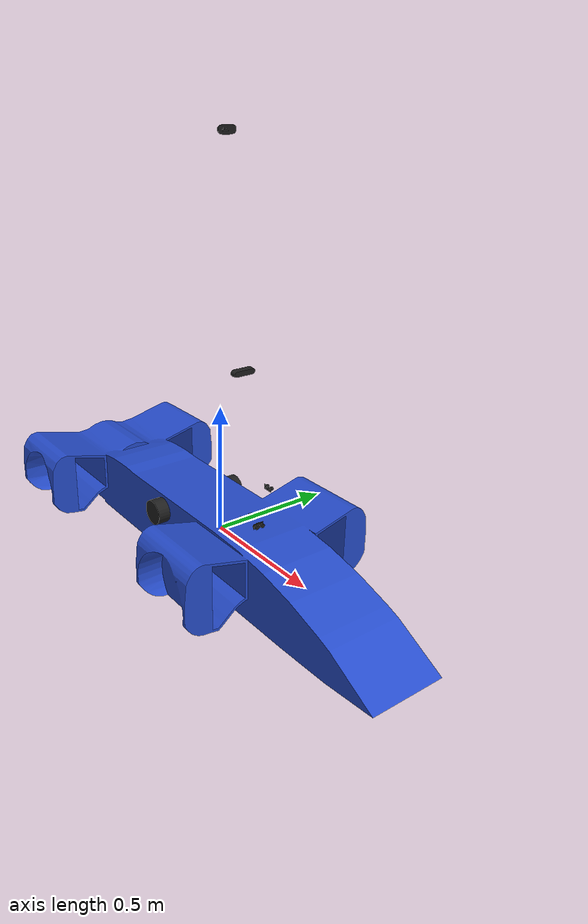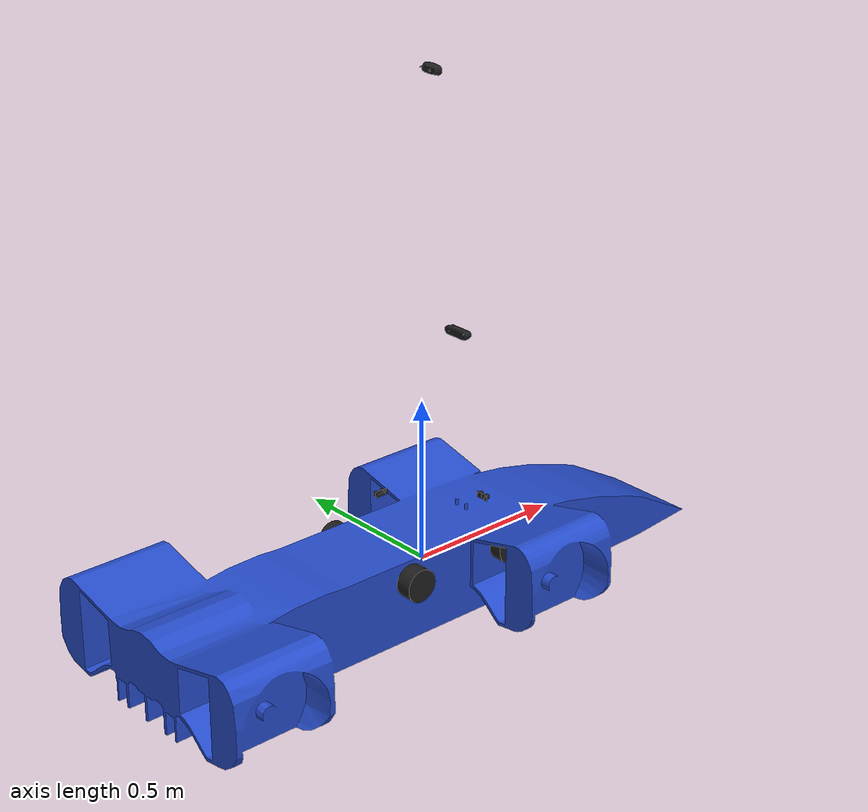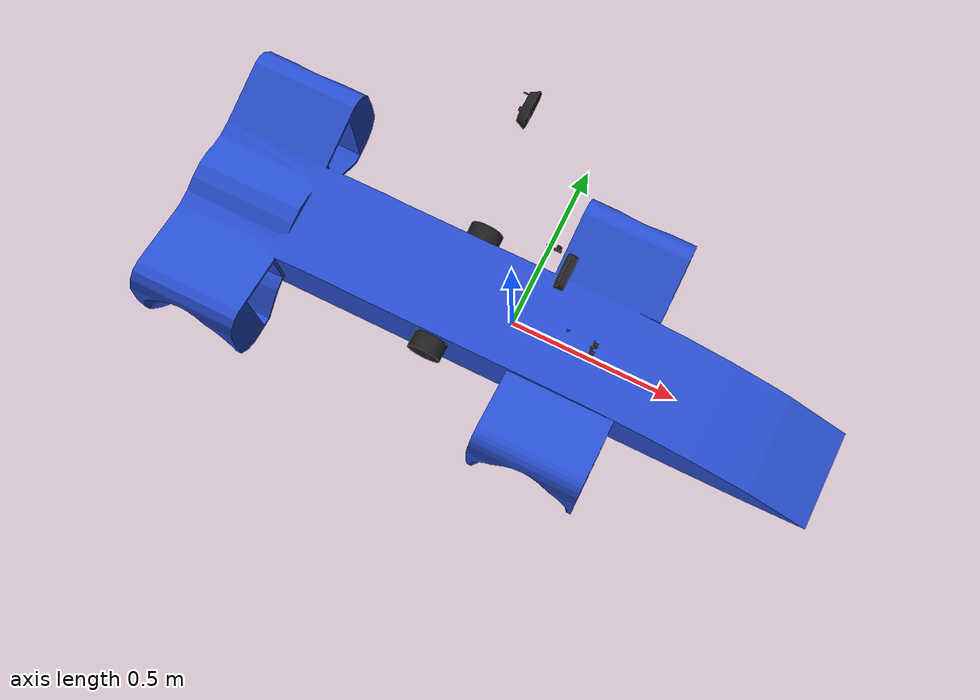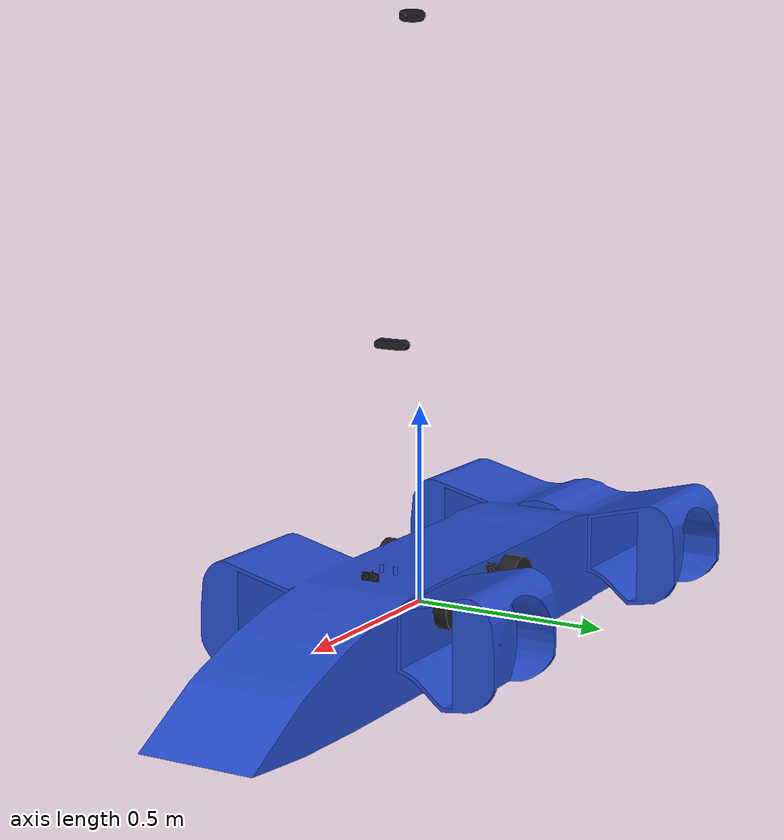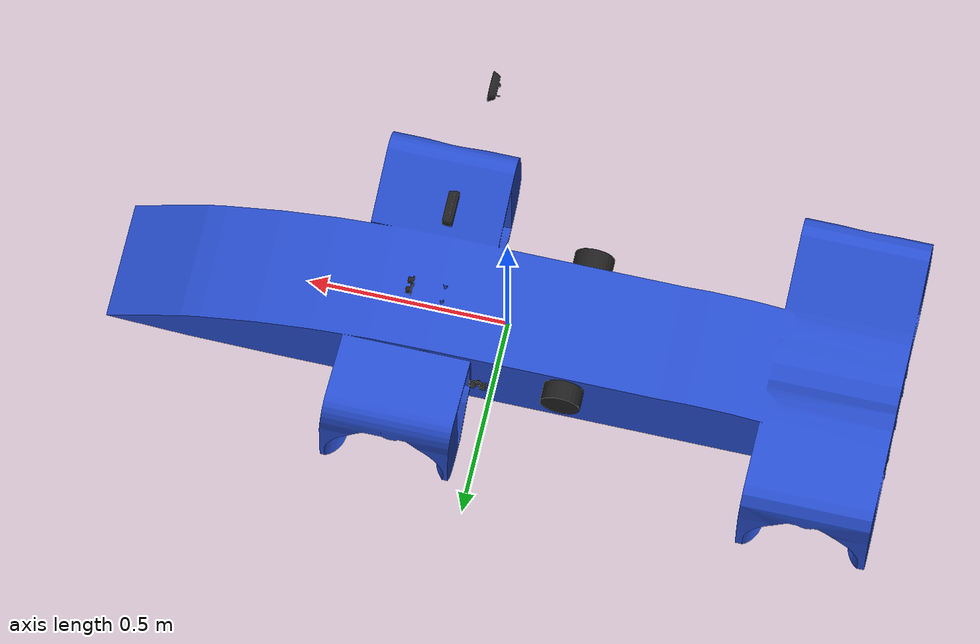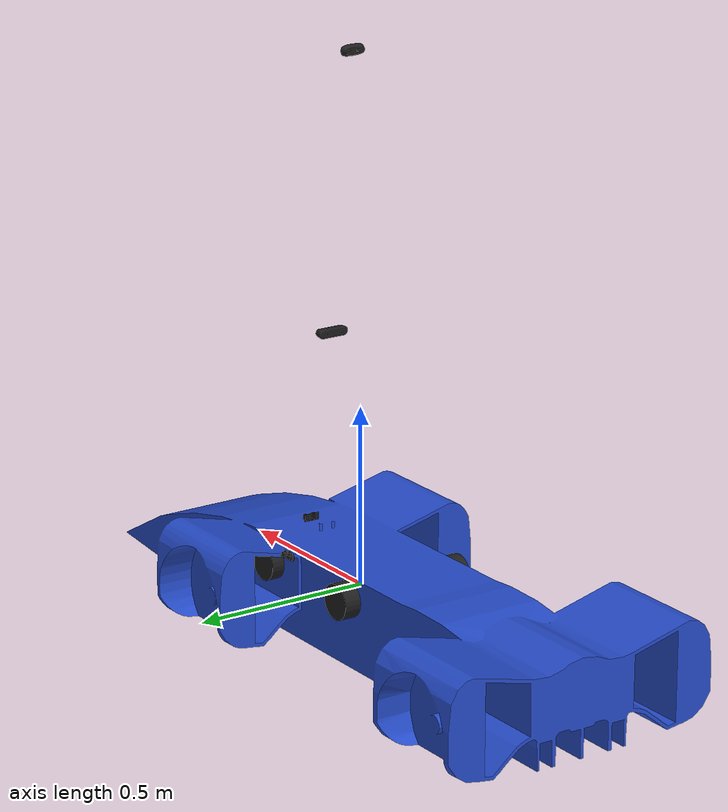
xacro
<?xml version="1.0"?>

<robot name="my_robot"
    xmlns:xacro="http://www.ros.org/wiki/xacro">
    <xacro:include filename="$(find my_robot)/urdf/moovy.gazebo" />
    <gazebo reference="base_link">
        <material>Gazebo/Blue</material>
    </gazebo>

    <gazebo reference="front_left_wheel">
        <material>Gazebo/Black</material>
    </gazebo>

    <gazebo reference="front_right_wheel">
        <material>Gazebo/Black</material>
    </gazebo>

    <gazebo reference="back_left_wheel">
        <material>Gazebo/Black</material>
    </gazebo>

    <gazebo reference="back_right_wheel">
        <material>Gazebo/Black</material>
    </gazebo>

    <gazebo reference="camera_link">
        <material>Gazebo/Black</material>
    </gazebo>

    <gazebo reference="front_ultrasonic_link">
        <material>Gazebo/Black</material>
    </gazebo>

    <gazebo reference="left_ultrasonic_link">
        <material>Gazebo/Black</material>
    </gazebo>
    <gazebo reference="realsense_link">
        <material>Gazebo/Black</material>
    </gazebo>
    <link name="robot_footprint">
    </link>

    <link name="base_link">
        <origin xyz="0 0 0" rpy=" 0 -0 0"/>
        <visual>
            <geometry>
                <mesh filename="package://my_robot/meshes/base_link.stl"/>
            </geometry>
            <origin rpy="0 0 0" xyz="0 0 0"/>
        </visual>
        <collision>
            <geometry>
                <mesh filename="package://my_robot/meshes/base_link.stl"/>
            </geometry>
            <origin rpy="0 0 0" xyz="0 0 0.1"/>
        </collision>
        <inertial>
            <mass value="10"/>
            <inertia ixx="0.166667" ixy="0.0" ixz="0.0" iyy="0.166667" iyz="0.0" izz="0.166667"/>
            <origin rpy="0 0 0" xyz="0 0 0.05"/>
        </inertial>
    </link>

    <link name="front_left_wheel">
        <visual>
            <geometry>
                <cylinder length="0.05" radius="0.05"/>
            </geometry>
            <origin rpy="1.5707 0 0" xyz="0 0 0"/>
        </visual>
        <collision>
            <geometry>
                <cylinder length="0.05" radius="0.05"/>
            </geometry>
            <origin rpy="1.5707 0 0" xyz="0 0 0"/>
        </collision>
        <inertial>
            <mass value="5"/>
            <inertia ixx="0.14" ixy="0.0" ixz="0.0" iyy="0.14" iyz="0.0" izz="0.12"/>
            <origin rpy="1.5707 0 0" xyz="0 0 0"/>
        </inertial>
    </link>

    <link name="front_right_wheel">
        <visual>
            <geometry>
                <cylinder length="0.05" radius="0.05"/>
            </geometry>
            <origin rpy="1.5707 0 0" xyz="0 0 0"/>
        </visual>
        <collision>
            <geometry>
                <cylinder length="0.05" radius="0.05"/>
            </geometry>
            <origin rpy="1.5707 0 0" xyz="0 0 0"/>
        </collision>
        <inertial>
            <mass value="5"/>
            <inertia ixx="0.14" ixy="0.0" ixz="0.0" iyy="0.14" iyz="0.0" izz="0.12"/>
            <origin rpy="1.5707 0 0" xyz="0 0 0"/>
        </inertial>
    </link>

    <link name="back_left_wheel">
        <visual>
            <geometry>
                <cylinder length="0.05" radius="0.05"/>
            </geometry>
            <origin rpy="1.5707 0 0" xyz="0 0 0"/>
        </visual>
        <collision>
            <geometry>
                <cylinder length="0.05" radius="0.05"/>
            </geometry>
            <origin rpy="1.5707 0 0" xyz="0 0 0"/>
        </collision>
        <inertial>
            <mass value="5"/>
            <inertia ixx="0.14" ixy="0.0" ixz="0.0" iyy="0.14" iyz="0.0" izz="0.12"/>
            <origin rpy="1.5707 0 0" xyz="0 0 0"/>
        </inertial>
    </link>

    <link name="back_right_wheel">
        <visual>
            <geometry>
                <cylinder length="0.05" radius="0.05"/>
            </geometry>
            <origin rpy="1.5707 0 0" xyz="0 0 0"/>
        </visual>
        <collision>
            <geometry>
                <cylinder length="0.05" radius="0.05"/>
            </geometry>
            <origin rpy="1.5707 0 0" xyz="0 0 0"/>
        </collision>
        <inertial>
            <mass value="5"/>
            <inertia ixx="0.14" ixy="0.0" ixz="0.0" iyy="0.14" iyz="0.0" izz="0.12"/>
            <origin rpy="1.5707 0 0" xyz="0 0 0"/>
        </inertial>
    </link>

    <joint name="robot_footprint_joint" type="fixed">
        <parent link="robot_footprint"/>
        <child link="base_link"/>
        <origin xyz="0 0 0" rpy="0 0 0" />
    </joint>

    <joint name="front_left_wheel_joint" type="continuous">
        <parent link="base_link"/>
        <child link="front_left_wheel"/>
        <origin rpy="0 0 0" xyz="0.175 0.175 0.05"/>
        <axis rpy="0 0 0" xyz="0 1 0"/>
        <dynamics damping="1.0" friction="1.0"/>
        <limit effort="10000" velocity="1000"/>
    </joint>

    <joint name="front_right_wheel_joint" type="continuous">
        <parent link="base_link"/>
        <child link="front_right_wheel"/>
        <origin rpy="0 0 0" xyz="0.175 -0.175 0.05"/>
        <axis rpy="0 0 0" xyz="0 1 0"/>
        <dynamics damping="1.0" friction="1.0"/>
        <limit effort="10000" velocity="1000"/>
    </joint>

    <joint name="back_left_wheel_joint" type="continuous">
        <parent link="base_link"/>
        <child link="back_left_wheel"/>
        <origin rpy="0 0 0" xyz="-0.175 0.175 0.05"/>
        <axis rpy="0 0 0" xyz="0 1 0"/>
        <dynamics damping="1.0" friction="1.0"/>
        <limit effort="10000" velocity="1000"/>
    </joint>

    <joint name="back_right_wheel_joint" type="continuous">
        <parent link="base_link"/>
        <child link="back_right_wheel"/>
        <origin rpy="0 0 0" xyz="-0.175 -0.175 0.05"/>
        <axis rpy="0 0 0" xyz="0 1 0"/>
        <dynamics damping="1.0" friction="1.0"/>
        <limit effort="10000" velocity="1000"/>
    </joint>
    <joint name="camera_joint" type="fixed">
        <parent link="base_link"/>
        <child link="camera_link"/>
        <axis xyz="0 0 0" />
        <origin xyz="0.04 0 1.457" rpy="0 0 0"/>
    </joint>

    <!-- Camera Link -->
    <link name="camera_link">
        <collision>
            <origin xyz="0 0 0" rpy="0 0 0"/>
            <geometry>
                <mesh filename="package://my_robot/meshes/camera_link.stl"/>
            </geometry>
        </collision>
        <visual>
            <origin xyz="0 0 0" rpy="0 0 0"/>
            <geometry>
                <mesh filename="package://my_robot/meshes/camera_link.stl"/>
            </geometry>
        </visual>
        <inertial>
            <mass value="1e-5" />
            <origin xyz="0 0 0" rpy="0 0 0"/>
            <inertia ixx="1e-6" ixy="0" ixz="0" iyy="1e-6" iyz="0" izz="1e-6" />
        </inertial>
    </link>

    <!-- Ultrasonic Sensors -->
    <link name="front_ultrasonic_link">
        <collision>
            <origin xyz="0 0 0" rpy="0 0 0"/>
            <geometry>
                <mesh filename="package://my_robot/meshes/ultrasonic_front_link.stl"/>
            </geometry>
        </collision>
        <visual>
            <origin xyz="0 0 0" rpy="0 0 0"/>
            <geometry>
                <mesh filename="package://my_robot/meshes/ultrasonic_front_link.stl"/>
            </geometry>
        </visual>
        <inertial>
            <mass value="1e-5" />
            <origin xyz="0 0 0" rpy="0 0 0"/>
            <inertia ixx="1e-6" ixy="0" ixz="0" iyy="1e-6" iyz="0" izz="1e-6" />
        </inertial>
    </link>

    <joint name="front_ultrasonic_joint" type="fixed">
        <parent link="base_link"/>
        <child link="front_ultrasonic_link"/>
        <axis xyz="0 0 0" />
        <origin xyz="0 0 0" rpy="0 0 0"/>
    </joint>

    <link name="left_ultrasonic_link">
        <collision>
            <origin xyz="0 0 0" rpy="0 0 0"/>
            <geometry>
                <mesh filename="package://my_robot/meshes/ultrasonic_left_link.stl"/>
            </geometry>
        </collision>
        <visual>
            <origin xyz="0 0 0" rpy="0 0 0"/>
            <geometry>
                <mesh filename="package://my_robot/meshes/ultrasonic_left_link.stl"/>
            </geometry>
        </visual>
        <inertial>
            <mass value="1e-5" />
            <origin xyz="0 0 0" rpy="0 0 0"/>
            <inertia ixx="1e-6" ixy="0" ixz="0" iyy="1e-6" iyz="0" izz="1e-6" />
        </inertial>
    </link>

    <joint name="left_ultrasonic_joint" type="fixed">
        <parent link="base_link"/>
        <child link="left_ultrasonic_link"/>
        <axis xyz="0 0 0" />
        <origin xyz="0 0 0" rpy="0 0 0"/>
    </joint>

    <joint name="realsense_optical_joint" type="fixed">
        <origin xyz="0 0 0" rpy="-1.5707 0 -1.5707"/>
        <parent link="realsense_link"/>
        <child link="realsense_optical_link"/>
    </joint>

    <link name="realsense_optical_link">
    </link>

    <!-- Depth Camera Intel RealSense D435i -->
    <link name="realsense_link">
        <collision>
            <origin xyz="0 0 0" rpy="0 0 0"/>
            <geometry>
                <mesh filename="package://my_robot/meshes/realsense_link.stl"/>
            </geometry>
        </collision>
        <visual>
            <origin xyz="0 0 0" rpy="0 0 0"/>
            <geometry>
                <mesh filename="package://my_robot/meshes/realsense_link.stl"/>
            </geometry>
        </visual>
        <inertial>
            <mass value="1e-5" />
            <origin xyz="0 0 0" rpy="0 0 0"/>
            <inertia ixx="1e-6" ixy="0" ixz="0" iyy="1e-6" iyz="0" izz="1e-6" />
        </inertial>
    </link>

    <joint name="realsense_joint" type="fixed">
        <parent link="base_link"/>
        <child link="realsense_link"/>
        <axis xyz="0 0 0" />
        <origin xyz="0.15 0 0.675" rpy="0 0 0"/>
    </joint>

    <gazebo reference="base_link">
        <material>Gazebo/Blue</material>
    </gazebo>

</robot>
